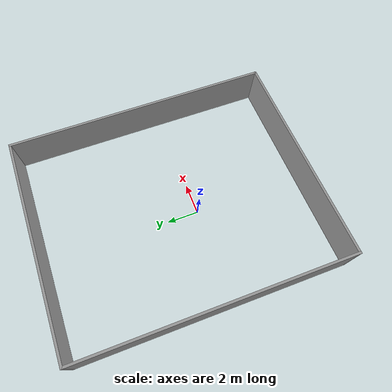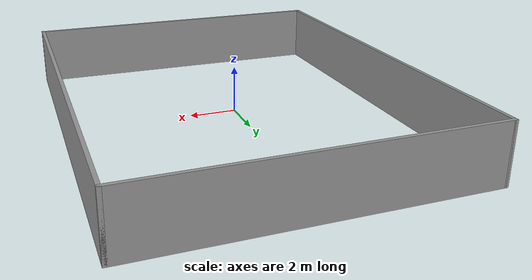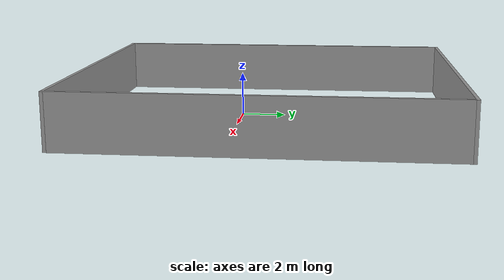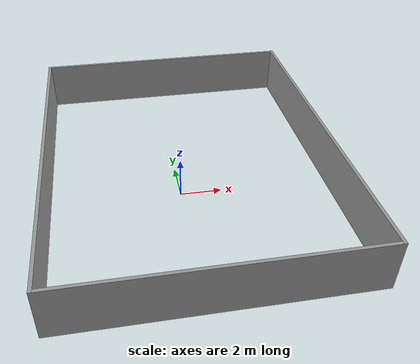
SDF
<?xml version='1.0'?>
<sdf version='1.6'>
  <model name='env_with_wall'>
    <pose frame=''>0.54466 1.39594 0 0 -0 0</pose>
    <link name='Wall_4'>
      <collision name='Wall_4_Collision'>
        <geometry>
          <box>
            <size>17 0.15 2.5</size>
          </box>
        </geometry>
        <pose frame=''>0 0 1.25 0 -0 0</pose>
      </collision>
      <visual name='Wall_4_Visual'>
        <pose frame=''>0 0 1.25 0 -0 0</pose>
        <geometry>
          <box>
            <size>17 0.15 2.5</size>
          </box>
        </geometry>
        <material>
          <script>
            <uri>file://media/materials/scripts/gazebo.material</uri>
            <name>Gazebo/Grey</name>
          </script>
          <ambient>1 1 1 1</ambient>
        </material>
        <meta>
          <layer>0</layer>
        </meta>
      </visual>
      <pose frame=''>-6.79966 6.1e-05 0 0 -0 -1.5708</pose>
    </link>
    <link name='Wall_7'>
      <collision name='Wall_7_Collision'>
        <geometry>
          <box>
            <size>13.75 0.15 2.5</size>
          </box>
        </geometry>
        <pose frame=''>0 0 1.25 0 -0 0</pose>
      </collision>
      <visual name='Wall_7_Visual'>
        <pose frame=''>0 0 1.25 0 -0 0</pose>
        <geometry>
          <box>
            <size>13.75 0.15 2.5</size>
          </box>
        </geometry>
        <material>
          <script>
            <uri>file://media/materials/scripts/gazebo.material</uri>
            <name>Gazebo/Grey</name>
          </script>
          <ambient>1 1 1 1</ambient>
        </material>
        <meta>
          <layer>0</layer>
        </meta>
      </visual>
      <pose frame=''>0.000113 8.425 0 0 -0 -9e-06</pose>
    </link>
    <link name='Wall_8'>
      <collision name='Wall_8_Collision'>
        <geometry>
          <box>
            <size>17 0.15 2.5</size>
          </box>
        </geometry>
        <pose frame=''>0 0 1.25 0 -0 0</pose>
      </collision>
      <visual name='Wall_8_Visual'>
        <pose frame=''>0 0 1.25 0 -0 0</pose>
        <geometry>
          <box>
            <size>17 0.15 2.5</size>
          </box>
        </geometry>
        <material>
          <script>
            <uri>file://media/materials/scripts/gazebo.material</uri>
            <name>Gazebo/Grey</name>
          </script>
          <ambient>1 1 1 1</ambient>
        </material>
        <meta>
          <layer>0</layer>
        </meta>
      </visual>
      <pose frame=''>6.79989 -6.1e-05 0 0 -0 -1.5708</pose>
    </link>
    <link name='Wall_9'>
      <collision name='Wall_9_Collision'>
        <geometry>
          <box>
            <size>13.75 0.15 2.5</size>
          </box>
        </geometry>
        <pose frame=''>0 0 1.25 0 -0 0</pose>
      </collision>
      <visual name='Wall_9_Visual'>
        <pose frame=''>0 0 1.25 0 -0 0</pose>
        <geometry>
          <box>
            <size>13.75 0.15 2.5</size>
          </box>
        </geometry>
        <material>
          <script>
            <uri>file://media/materials/scripts/gazebo.material</uri>
            <name>Gazebo/Grey</name>
          </script>
          <ambient>1 1 1 1</ambient>
        </material>
        <meta>
          <layer>0</layer>
        </meta>
      </visual>
      <pose frame=''>-0.000114 -8.42506 0 0 -0 3.14159</pose>
    </link>
    <static>1</static>
  </model>
</sdf>
